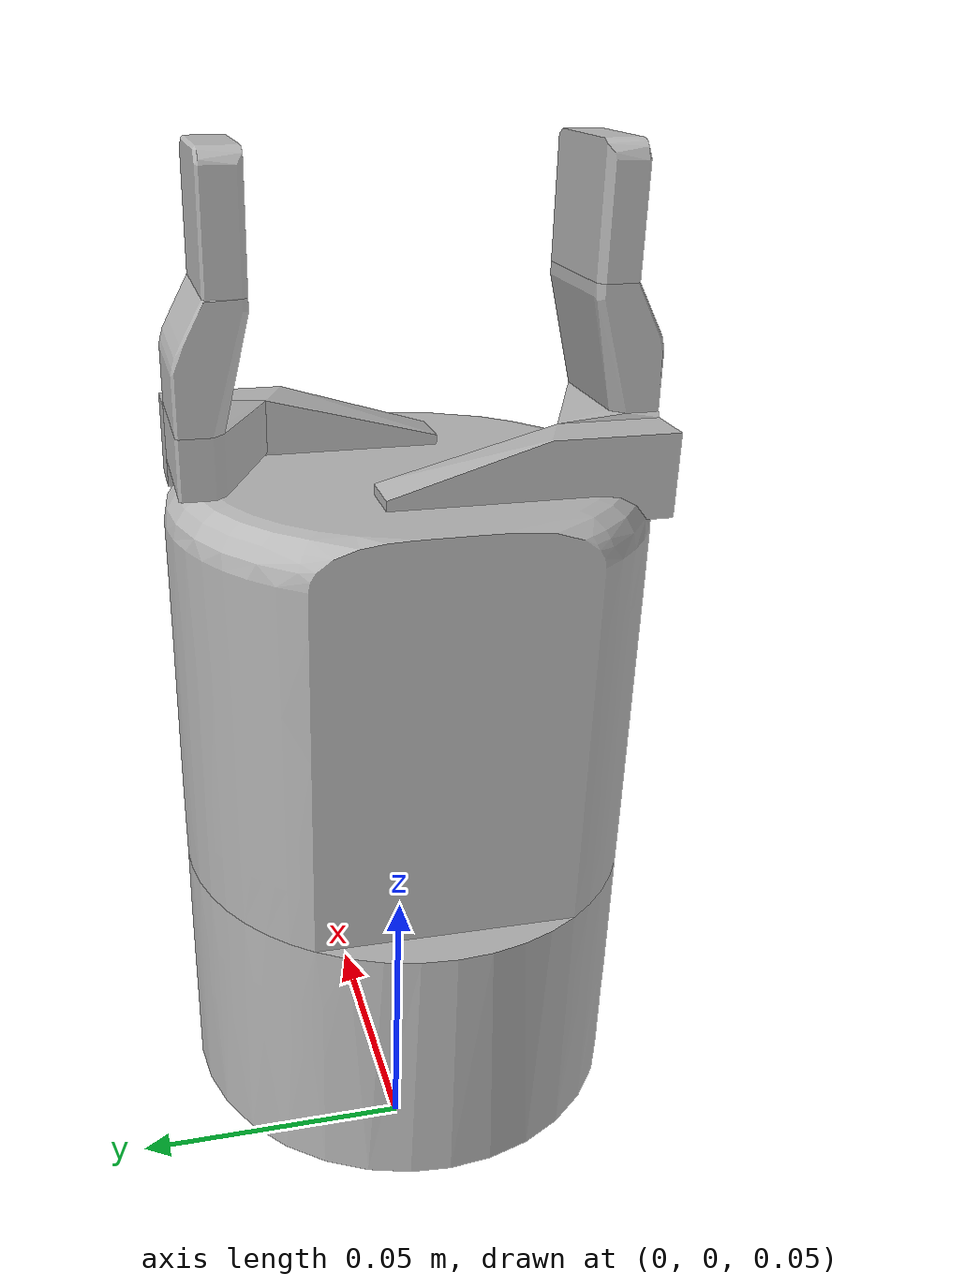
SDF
<?xml version="1.0" encoding="UTF-8"?>
<sdf version="1.6">
  <model name="robotiq_hande">
    <!-- Base of the gripper -->
    <link name="gripper_body">
      <inertial>
        <mass>1</mass>
        <inertia>
          <ixx>0.1</ixx>
          <ixy>0</ixy>
          <ixz>0</ixz>
          <iyy>0.1</iyy>
          <iyz>0</iyz>
          <izz>0.1</izz>
        </inertia>
      </inertial>
      <visual name="visual1">
        <pose>0 0 0 0 0 0</pose>
        <geometry>
          <mesh>
            <uri>robotiq_hande/robotiq_hande_body_c01.stl</uri>
          </mesh>
        </geometry>
      </visual>
      <visual name="visual2">
        <pose>0 0 0 0 0 0</pose>
        <geometry>
          <mesh>
            <uri>robotiq_hande/robotiq_hande_body_c02.stl</uri>
          </mesh>
        </geometry>
      </visual>
      <collision name="collision1">
        <pose>0 0 0 0 0 0</pose>
        <geometry>
          <mesh>
            <uri>robotiq_hande/robotiq_hande_body_c01.stl</uri>
          </mesh>
        </geometry>
      </collision>
      <collision name="collision2">
        <pose>0 0 0 0 0 0</pose>
        <geometry>
          <mesh>
            <uri>robotiq_hande/robotiq_hande_body_c02.stl</uri>
          </mesh>
        </geometry>
      </collision>
    </link>

    <!-- Fingers and their prismatic joints -->
    <link name="gripper_finger1">
      <inertial>
        <mass>1</mass>
        <inertia>
          <ixx>0.1</ixx>
          <ixy>0</ixy>
          <ixz>0</ixz>
          <iyy>0.1</iyy>
          <iyz>0</iyz>
          <izz>0.1</izz>
        </inertia>
      </inertial>
      <visual name="visual1">
        <pose>0 0 0 0 0 0</pose>
        <geometry>
          <mesh>
            <uri>robotiq_hande/robotiq_hande_finger_c01.stl</uri>
          </mesh>
        </geometry>
      </visual>
      <visual name="visual2">
        <pose>0 0 0 0 0 0</pose>
        <geometry>
          <mesh>
            <uri>robotiq_hande/robotiq_hande_finger_c02.stl</uri>
          </mesh>
        </geometry>
      </visual>
      <visual name="visual3">
        <pose>0 0 0 0 0 0</pose>
        <geometry>
          <mesh>
            <uri>robotiq_hande/robotiq_hande_finger_c03.stl</uri>
          </mesh>
        </geometry>
      </visual>
      <visual name="visual4">
        <pose>0 0 0 0 0 0</pose>
        <geometry>
          <mesh>
            <uri>robotiq_hande/robotiq_hande_finger_c04.stl</uri>
          </mesh>
        </geometry>
      </visual>
      <collision name="collision1">
        <pose>0 0 0 0 0 0</pose>
        <geometry>
          <mesh>
            <uri>robotiq_hande/robotiq_hande_finger_c01.stl</uri>
          </mesh>
        </geometry>
      </collision>
      <collision name="collision2">
        <pose>0 0 0 0 0 0</pose>
        <geometry>
          <mesh>
            <uri>robotiq_hande/robotiq_hande_finger_c02.stl</uri>
          </mesh>
        </geometry>
      </collision>
      <collision name="collision3">
        <pose>0 0 0 0 0 0</pose>
        <geometry>
          <mesh>
            <uri>robotiq_hande/robotiq_hande_finger_c03.stl</uri>
          </mesh>
        </geometry>
      </collision>
      <collision name="collision4">
        <pose>0 0 0 0 0 0</pose>
        <geometry>
          <mesh>
            <uri>robotiq_hande/robotiq_hande_finger_c04.stl</uri>
          </mesh>
        </geometry>
      </collision>
    </link>
    <link name="gripper_finger2">
      <inertial>
        <mass>1</mass>
        <inertia>
          <ixx>0.1</ixx>
          <ixy>0</ixy>
          <ixz>0</ixz>
          <iyy>0.1</iyy>
          <iyz>0</iyz>
          <izz>0.1</izz>
        </inertia>
      </inertial>
      <visual name="visual1">
        <pose>0 0 0 0 0 3.14157</pose>
        <geometry>
          <mesh>
            <uri>robotiq_hande/robotiq_hande_finger_c01.stl</uri>
          </mesh>
        </geometry>
      </visual>
      <visual name="visual2">
        <pose>0 0 0 0 0 3.14157</pose>
        <geometry>
          <mesh>
            <uri>robotiq_hande/robotiq_hande_finger_c02.stl</uri>
          </mesh>
        </geometry>
      </visual>
      <visual name="visual3">
        <pose>0 0 0 0 0 3.14157</pose>
        <geometry>
          <mesh>
            <uri>robotiq_hande/robotiq_hande_finger_c03.stl</uri>
          </mesh>
        </geometry>
      </visual>
      <visual name="visual4">
        <pose>0 0 0 0 0 3.14157</pose>
        <geometry>
          <mesh>
            <uri>robotiq_hande/robotiq_hande_finger_c04.stl</uri>
          </mesh>
        </geometry>
      </visual>
      <collision name="collision1">
        <pose>0 0 0 0 0 3.14157</pose>
        <geometry>
          <mesh>
            <uri>robotiq_hande/robotiq_hande_finger_c01.stl</uri>
          </mesh>
        </geometry>
      </collision>
      <collision name="collision2">
        <pose>0 0 0 0 0 3.14157</pose>
        <geometry>
          <mesh>
            <uri>robotiq_hande/robotiq_hande_finger_c02.stl</uri>
          </mesh>
        </geometry>
      </collision>
      <collision name="collision3">
        <pose>0 0 0 0 0 3.14157</pose>
        <geometry>
          <mesh>
            <uri>robotiq_hande/robotiq_hande_finger_c03.stl</uri>
          </mesh>
        </geometry>
      </collision>
      <collision name="collision4">
        <pose>0 0 0 0 0 3.14157</pose>
        <geometry>
          <mesh>
            <uri>robotiq_hande/robotiq_hande_finger_c04.stl</uri>
          </mesh>
        </geometry>
      </collision>
    </link>

    <link name="sticky_link">
      <pose>0.0 0.0 0.128 0 0 0</pose>
      <inertial>
        <mass>0.001</mass>
        <pose>0 0 0 0 0 0</pose>
        <inertia>
          <ixx>0.00000160833269</ixx>
          <ixy>0</ixy>
          <ixz>0</ixz>
          <iyy>0.00000160833269</iyy>
          <iyz>0</iyz>
          <izz>0.0000032</izz>
        </inertia>
      </inertial>
      <collision name="collision_grip">
        <pose>0 0 0.0 0 0 0</pose>
        <geometry>
          <cylinder>
            <radius>0.02</radius>
            <length>0.04</length>
          </cylinder>
        </geometry>
        <surface>
          <contact>
            <collide_without_contact>true</collide_without_contact>
          </contact>
        </surface>
      </collision>
    </link>
    <joint name="sticky_link_joint" type="fixed">
      <parent>gripper_body</parent>
      <child>sticky_link</child>
    </joint>

    <joint name="finger1" type="prismatic">
      <parent>gripper_body</parent>
      <child>gripper_finger1</child>
      <pose>0 0 0 0 0 0</pose>
      <axis>
        <xyz>0 1 0</xyz>
        <limit>
          <lower>0</lower>
          <upper>0.025</upper>
        </limit>
       </axis>
    </joint>
    <joint name="finger2" type="prismatic">
      <parent>gripper_body</parent>
      <child>gripper_finger2</child>
      <pose>0 0 0 0 0 0</pose>
      <axis>
        <xyz>0 -1 0</xyz>
        <limit>
          <lower>0</lower>
          <upper>0.025</upper>
        </limit>
       </axis>
    </joint>

  </model>
</sdf>
